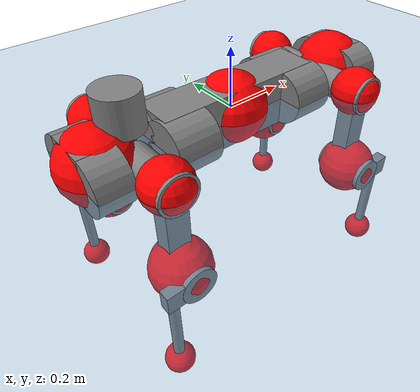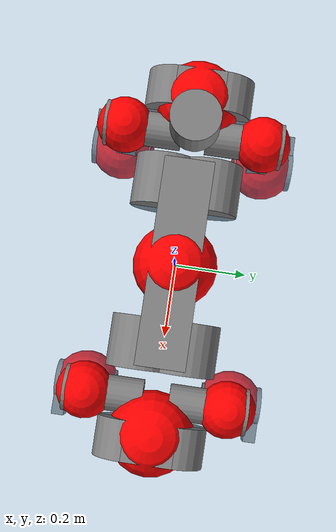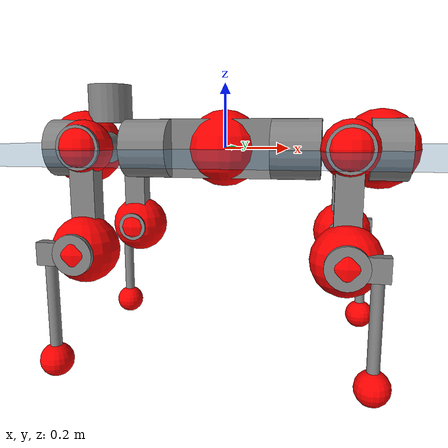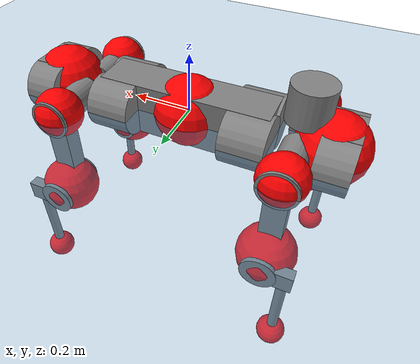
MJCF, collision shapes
<mujoco model="anymal_c">
  <compiler angle="radian" assetdir="assets" balanceinertia="true" inertiafromgeom="false"/>

  <option timestep="0.005" density="1.2" viscosity="2e-05"/>

  <size nkey="1"/>

  <visual>
    <quality shadowsize="8192"/>
    <map shadowclip="0.5"/>
  </visual>

  <default>
    <default class="/">
      <material specular="0" shininess="0.25"/>
      <geom contype="0" conaffinity="0" group="1" solref="-1000 -80"/>
      <site size="0.01 0.005 0.005" group="5"/>
      <general forcelimited="true" forcerange="-80 80" biastype="affine" gainprm="80" biasprm="0 -80 -2"/>
      <default class="anymal_c">
        <joint armature="0.01" damping="0.01" frictionloss="0.1"/>
        <default class="visual">
          <geom type="mesh" group="2"/>
          <default class="visual_zflip"/>
        </default>
        <default class="collision">
          <geom type="cylinder" group="3"/>
          <default class="foot">
            <geom size="0.03 0 0" type="sphere" condim="6" priority="1" friction="0.8 0.02 0.01" solimp="0.015 1 0.03"/>
          </default>
        </default>
      </default>
      <default class="reward_collision_sphere">
        <geom group="5" rgba="1 0 0 1"/>
      </default>
    </default>
  </default>

  <asset>
    <texture type="skybox" colorspace="auto" name="//unnamed_texture_0" builtin="gradient" rgb1="0.95 0.95 0.95" rgb2="0.95 0.95 0.95" width="100" height="600"/>
    <texture type="2d" colorspace="auto" name="texplane" builtin="checker" rgb1="0.345 0.575 0.748" rgb2="0.345 0.575 0.748" markrgb="1 1 1" width="512" height="512"/>
    <texture type="2d" colorspace="linear" name="base" file="base.png"/>
    <texture type="2d" colorspace="linear" name="top_shell" file="top_shell.png"/>
    <texture type="2d" colorspace="linear" name="bottom_shell" file="bottom_shell.png"/>
    <texture type="2d" colorspace="linear" name="remote" file="remote.png"/>
    <texture type="2d" colorspace="linear" name="hatch" file="hatch.png"/>
    <texture type="2d" colorspace="linear" name="handle" file="handle.png"/>
    <texture type="2d" colorspace="linear" name="face" file="face.png"/>
    <texture type="2d" colorspace="linear" name="battery" file="battery.png"/>
    <texture type="2d" colorspace="linear" name="lidar_cage" file="lidar_cage.png"/>
    <texture type="2d" colorspace="linear" name="depth_camera" file="depth_camera.png"/>
    <texture type="2d" colorspace="linear" name="wide_angle_camera" file="wide_angle_camera.png"/>
    <texture type="2d" colorspace="linear" name="lidar" file="lidar.png"/>
    <texture type="2d" colorspace="linear" name="drive" file="drive.png"/>
    <texture type="2d" colorspace="linear" name="hip_l" file="hip_l.png"/>
    <texture type="2d" colorspace="linear" name="shank_l" file="shank_l.png"/>
    <texture type="2d" colorspace="linear" name="foot" file="foot.png"/>
    <texture type="2d" colorspace="linear" name="thigh" file="thigh.png"/>
    <texture type="2d" colorspace="linear" name="shank_r" file="shank_r.png"/>
    <texture type="2d" colorspace="linear" name="hip_r" file="hip_r.png"/>
    <material name="MatPlane" class="/" texture="texplane" texuniform="true" texrepeat="2 2" specular="0.9" shininess="0.5"/>
    <material name="black_plastic" class="/" rgba="0.007 0.007 0.007 1"/>
    <material name="green" class="/" rgba="0.052 0.178 0.033 1"/>
    <material name="red" class="/" rgba="0.178 0.006 0.005 1"/>
    <material name="yellow" class="/" rgba="0.178 0.119 0.006 1"/>
    <material name="lwl" class="/" rgba="0.8 0.8 0.8 1"/>
    <material name="base" class="/" texture="base"/>
    <material name="top_shell" class="/" texture="top_shell"/>
    <material name="bottom_shell" class="/" texture="bottom_shell"/>
    <material name="hip_l" class="/" texture="hip_l"/>
    <material name="thigh" class="/" texture="thigh"/>
    <material name="shank_l" class="/" texture="shank_l"/>
    <material name="foot" class="/" texture="foot"/>
    <material name="hip_r" class="/" texture="hip_r"/>
    <material name="shank" class="/" texture="shank_r"/>
    <material name="hatch" class="/" texture="hatch"/>
    <material name="remote" class="/" texture="remote"/>
    <material name="handle" class="/" texture="handle"/>
    <material name="face" class="/" texture="face"/>
    <material name="depth_camera" class="/" texture="depth_camera"/>
    <material name="wide_angle_camera" class="/" texture="wide_angle_camera"/>
    <material name="battery" class="/" texture="battery"/>
    <material name="lidar_cage" class="/" texture="lidar_cage"/>
    <material name="lidar" class="/" texture="lidar"/>
    <material name="drive" class="/" texture="drive"/>
    <mesh name="base_0" class="/" file="base_0.obj"/>
    <mesh name="base_1" class="/" file="base_1.obj"/>
    <mesh name="base_2" class="/" file="base_2.obj"/>
    <mesh name="base_3" class="/" file="base_3.obj"/>
    <mesh name="base_4" class="/" file="base_4.obj"/>
    <mesh name="base_5" class="/" file="base_5.obj"/>
    <mesh name="top_shell" class="/" file="top_shell.obj"/>
    <mesh name="bottom_shell" class="/" file="bottom_shell.obj"/>
    <mesh name="remote" class="/" file="remote.obj"/>
    <mesh name="handle" class="/" file="handle.obj"/>
    <mesh name="face" class="/" file="face.obj"/>
    <mesh name="wide_angle_camera" class="/" file="wide_angle_camera.obj"/>
    <mesh name="depth_camera" class="/" file="depth_camera.obj"/>
    <mesh name="battery" class="/" file="battery.obj"/>
    <mesh name="lidar_cage" class="/" file="lidar_cage.obj"/>
    <mesh name="lidar" class="/" file="lidar.obj"/>
    <mesh name="drive" class="/" file="drive.obj"/>
    <mesh name="hip_l" class="/" file="hip_l.obj"/>
    <mesh name="thigh" class="/" file="thigh.obj"/>
    <mesh name="shank_l" class="/" file="shank_l.obj"/>
    <mesh name="foot" class="/" file="foot.obj"/>
    <mesh name="hip_r" class="/" file="hip_r.obj"/>
    <mesh name="hatch" class="/" file="hatch.obj"/>
    <mesh name="shank_r" class="/" file="shank_r.obj"/>
  </asset>

  <worldbody>
    <geom name="floor" class="/" size="100 100 0.125" type="plane" group="0" material="MatPlane"/>
    <light name="toplight_shadow" class="/" pos="0 0 5" dir="0.0990148 0.0990148 -0.990148" type="directional" ambient="0.04 0.04 0.04" diffuse="0.55 0.55 0.55" specular="0.12 0.12 0.12"/>
    <light name="toplight_fill" class="/" pos="0 0 5" dir="0.0990148 0.0990148 -0.990148" type="directional" castshadow="false" ambient="0.04 0.04 0.04" diffuse="0.3 0.3 0.3" specular="0.08 0.08 0.08"/>
    <body name="trunk" childclass="anymal_c" pos="-0.000205713 0.000877177 -0.000191075" quat="1 0.00037461 7.04534e-05 -0.000211436">
      <inertial pos="0.00337825 -0.000763419 0.0509908" quat="0.500034 0.502634 0.500512 0.496802" mass="18.6823" diaginertia="0.802582 0.363205 0.269728"/>
      <joint name="//unnamed_joint_0" type="free" armature="0" damping="0" frictionloss="0"/>
      <geom name="//unnamed_geom_1" class="visual" material="green" mesh="base_0"/>
      <geom name="//unnamed_geom_2" class="visual" material="yellow" mesh="base_1"/>
      <geom name="//unnamed_geom_3" class="visual" material="red" mesh="base_2"/>
      <geom name="//unnamed_geom_4" class="visual" material="black_plastic" mesh="base_3"/>
      <geom name="//unnamed_geom_5" class="visual" material="lwl" mesh="base_4"/>
      <geom name="//unnamed_geom_6" class="visual" material="base" mesh="base_5"/>
      <geom name="trunk_1" class="collision" size="0.289958 0.0699898 0.0899869" type="box"/>
      <geom name="trunk_2" class="collision" size="0.0899869 0.0724895" pos="0.228609 0.0630039 0" quat="0.707107 0 0.707107 0"/>
      <geom name="trunk_3" class="collision" size="0.0899869 0.0724895" pos="-0.228609 0.0630039 0" quat="0.707107 0 0.707107 0"/>
      <geom name="trunk_4" class="collision" size="0.0899869 0.0724895" pos="0.228609 -0.0630039 0" quat="0.707107 0 0.707107 0"/>
      <geom name="trunk_5" class="collision" size="0.0899869 0.0724895" pos="-0.228609 -0.0630039 0" quat="0.707107 0 0.707107 0"/>
      <geom name="//unnamed_geom_12" class="visual" material="top_shell" mesh="top_shell"/>
      <geom name="//unnamed_geom_13" class="visual" material="bottom_shell" mesh="bottom_shell"/>
      <geom name="//unnamed_geom_14" class="visual" material="remote" mesh="remote"/>
      <geom name="//unnamed_geom_15" class="visual" material="handle" mesh="handle"/>
      <geom name="//unnamed_geom_16" class="visual" pos="0.435671 0 0" quat="1 0 0 0" material="face" mesh="face"/>
      <geom name="trunk_6" class="collision" size="0.054992 0.0699898 0.0899869" pos="0.49348 0 0" type="box"/>
      <geom name="//unnamed_geom_18" class="collision" size="0.0899869 0.054992" pos="0.49348 0.0630039 0" quat="0.707107 0 0.707107 0"/>
      <geom name="//unnamed_geom_19" class="collision" size="0.0899869 0.054992" pos="0.49348 -0.0630039 0" quat="0.707107 0 0.707107 0"/>
      <geom name="//unnamed_geom_20" class="visual" pos="0.485229 0 -0.0305942" quat="0.965926 0 0.258819 0" material="depth_camera" mesh="depth_camera"/>
      <geom name="//unnamed_geom_21" class="visual" pos="0.539202 0 0.015695" material="wide_angle_camera" mesh="wide_angle_camera"/>
      <geom name="//unnamed_geom_22" class="visual_zflip" pos="-0.435671 0 0" quat="0 0 0 1" material="face" mesh="face"/>
      <geom name="trunk_7" class="collision" size="0.054992 0.0699898 0.0899869" pos="-0.49348 0 0" quat="0 0 0 1" type="box"/>
      <geom name="//unnamed_geom_24" class="collision" size="0.0899869 0.054992" pos="-0.49348 -0.0630039 0" quat="0 -0.707107 0 0.707107"/>
      <geom name="//unnamed_geom_25" class="collision" size="0.0899869 0.054992" pos="-0.49348 0.0630039 0" quat="0 -0.707107 0 0.707107"/>
      <geom name="//unnamed_geom_26" class="visual" pos="-0.485229 0 -0.0305942" quat="0 -0.258819 0 0.965926" material="depth_camera" mesh="depth_camera"/>
      <geom name="//unnamed_geom_27" class="visual_zflip" pos="-0.539202 0 0.015695" quat="0 0 0 1" material="wide_angle_camera" mesh="wide_angle_camera"/>
      <geom name="//unnamed_geom_28" class="visual" material="battery" mesh="battery"/>
      <geom name="//unnamed_geom_29" class="visual" pos="0 0.0668364 0.0304771" quat="0.683013 -0.183013 0.183013 0.683013" material="depth_camera" mesh="depth_camera"/>
      <geom name="//unnamed_geom_30" class="visual" pos="0 -0.0668364 0.0304771" quat="0.683013 0.183013 0.183013 -0.683013" material="depth_camera" mesh="depth_camera"/>
      <geom name="//unnamed_geom_31" class="visual" pos="-0.382592 0 0.0770598" quat="1 0 0 0" material="lidar_cage" mesh="lidar_cage"/>
      <geom name="trunk_8" class="collision" size="0.0699898 0.0599913" pos="-0.382592 0 0.139966"/>
      <geom name="//unnamed_geom_33" class="visual" pos="-0.382592 -5.9332e-05 0.149087" quat="0.707107 0 0 -0.707107" material="lidar" mesh="lidar"/>
      <geom name="//unnamed_geom_34" class="visual" pos="0.315218 0.0936585 -2.55953e-09" quat="0.258819 0.965926 0 0" material="drive" mesh="drive"/>
      <geom name="//unnamed_geom_35" class="visual" pos="0.315218 -0.0936585 2.55953e-09" quat="0.258819 -0.965926 0 0" material="drive" mesh="drive"/>
      <geom name="//unnamed_geom_36" class="visual" pos="-0.315218 0.0936585 2.55953e-09" quat="0 0 0.965926 -0.258819" material="drive" mesh="drive"/>
      <geom name="//unnamed_geom_37" class="visual" pos="-0.315218 -0.0936585 -2.55953e-09" quat="0 0 -0.965926 -0.258819" material="drive" mesh="drive"/>
      <geom name="//unnamed_geom_38" class="visual" pos="0.121925 0 0.0765356" quat="1 0 0 0" material="hatch" mesh="hatch"/>
      <geom name="//unnamed_geom_39" class="reward_collision_sphere" size="0.119983"/>
      <geom name="//unnamed_geom_40" class="reward_collision_sphere" size="0.119983" pos="0.472984 0 0"/>
      <geom name="//unnamed_geom_41" class="reward_collision_sphere" size="0.119983" pos="-0.472984 0 0"/>
      <site name="imu" pos="0.262174 0.00602591 0.0470467" size="0.00999855"/>
      <camera name="track" pos="0 -1.80011 0" quat="0.707107 0.707107 0 0" mode="trackcom"/>
      <camera name="ego_camera" pos="0.472984 0 -0.0419373" quat="-0.5 -0.5 0.5 0.5"/>
      <body name="LF_HIP" pos="0.315645 0.0941266 1.88172e-05" quat="0.258786 0.965935 0.000153109 -3.76912e-05">
        <inertial pos="0.0595781 -0.0129499 -0.00870692" quat="-0.126738 0.709227 -0.140326 0.679149" mass="2.79886" diaginertia="0.00758883 0.00294438 0.00420677"/>
        <joint name="LF_HAA" pos="0 0 0" axis="1 6.47414e-05 -1.16781e-05" range="-0.704337 0.479542" armature="0.0101244" damping="0.00900077" frictionloss="0.0992364"/>
        <geom name="//unnamed_geom_42" class="visual" pos="0 -0.000150565 2.47303e-05" quat="0.258819 -0.965926 0 0" material="hip_l" mesh="hip_l"/>
        <geom name="//unnamed_geom_43" class="visual" pos="0.0629595 -0.0743531 -0.0440253" quat="0.183013 -0.683013 0.683013 0.183013" material="drive" mesh="drive"/>
        <geom name="//unnamed_geom_44" class="collision" size="0.0499927 0.0699898" pos="0.0629595 -0.0107645 -0.00723943" quat="-0.353553 -0.612372 0.612372 -0.353553"/>
        <body name="LF_THIGH" pos="0.0629074 -0.0664177 -0.04418" quat="0.182736 -0.682926 0.683221 0.182834">
          <inertial pos="0.0323797 0.000874088 -0.25788" quat="0.993019 -0.00440487 -0.0816525 0.0850127" mass="3.04308" diaginertia="0.038905 0.0177979 0.00530509"/>
          <joint name="LF_HFE" pos="0 0 0" axis="0.999995 -0.00309464 3.22367e-05" range="-3.12696 3.13345" armature="0.0103255" damping="0.0107306" frictionloss="0.104243"/>
          <geom name="//unnamed_geom_45" class="visual" pos="0.00300472 4.73473e-06 0" quat="0.707107 0 0 -0.707107" material="thigh" mesh="thigh"/>
          <geom name="//unnamed_geom_46" class="collision" size="0.0649906 0.0399942" pos="0.042043 0 0" quat="0.5 0.5 -0.5 -0.5"/>
          <geom name="//unnamed_geom_47" class="collision" size="0.0374946 0.0299956 0.141293" pos="0.0315323 0 -0.148158" quat="0.707107 0 0 -0.707107" type="box"/>
          <geom name="//unnamed_geom_48" class="visual" pos="0.105423 0 -0.298803" quat="1 0 0 0" material="drive" mesh="drive"/>
          <geom name="//unnamed_geom_49" class="collision" size="0.0499927 0.0699898" pos="0.0318476 0 -0.298803" quat="0.707107 0 0.707107 0"/>
          <geom name="//unnamed_geom_50" class="reward_collision_sphere" size="0.0799884" pos="0.0262769 0 0"/>
          <body name="LF_SHANK" pos="0.10563 -0.000286988 -0.300054" quat="1 3.01874e-05 2.80812e-05 1.69427e-05">
            <inertial pos="0.00579117 -0.0542256 -0.084123" quat="0.992932 -0.115924 -0.00143436 -0.0254042" mass="0.594884" diaginertia="0.0131921 0.0055315 0.00143624"/>
            <joint name="LF_KFE" pos="0 0 0" axis="0.999999 0.000942884 -0.000448968" range="-3.12516 3.1275" armature="0.0104514" damping="0.0065325" frictionloss="0.100454"/>
            <geom name="//unnamed_geom_51" class="visual" pos="0.000979773 0.0052242 0" quat="0.707107 0 0 -0.707107" material="shank_l" mesh="shank_l"/>
            <geom name="LF_kfe_act" class="collision" size="0.0599913 0.0199971" pos="0.0210215 0 0" quat="0.5 0.5 -0.5 -0.5"/>
            <geom name="//unnamed_geom_53" class="collision" size="0.0574907 0.0337451 0.0189972" pos="0.0210215 -0.0517523 0" quat="0.5 0.5 -0.5 -0.5" type="box"/>
            <geom name="//unnamed_geom_54" class="visual" pos="0.0137163 -0.0774763 -0.354339" quat="0.382683 0 0 -0.92388" material="foot" mesh="foot"/>
            <geom name="LF_calf" class="collision" size="0.0174975 0.141232" pos="0.0137165 -0.0791599 -0.177169" quat="0.707107 0 0 -0.707107"/>
            <geom name="LF_foot" class="foot" size="0.0299847" pos="0.0137165 -0.0791599 -0.330749" quat="0.707107 0 0 -0.707107"/>
            <geom name="//unnamed_geom_57" class="reward_collision_sphere" size="0.0999855" pos="-0.0525538 0 0"/>
            <geom name="//unnamed_geom_58" class="reward_collision_sphere" size="0.0499927" pos="0.0137165 -0.0791599 -0.330749"/>
            <site name="LF_foot" class="foot" pos="0.0137165 -0.0791599 -0.330749" quat="0.707107 0 0 -0.707107" size="0.00999855"/>
          </body>
        </body>
      </body>
      <body name="RF_HIP" pos="0.31522 -0.0934372 -0.000904122" quat="0.258856 -0.965916 -1.37164e-05 1.14593e-05">
        <inertial pos="0.059557 0.0137267 -0.00830464" quat="0.135226 0.679127 0.127832 0.710042" mass="2.79261" diaginertia="0.00760954 0.00290788 0.00417644"/>
        <joint name="RF_HAA" pos="0 0 0" axis="0.999996 -0.000680255 -0.00276532" range="-0.497924 0.718797" armature="0.0103521" damping="0.0089632" frictionloss="0.101577"/>
        <geom name="//unnamed_geom_59" class="visual" pos="0 0.000150564 2.47302e-05" quat="0.258819 0.965926 0 0" material="hip_r" mesh="hip_r"/>
        <geom name="//unnamed_geom_60" class="visual" pos="0.0629595 0.0743531 -0.0440253" quat="0.183013 0.683013 0.683013 -0.183013" material="drive" mesh="drive"/>
        <geom name="//unnamed_geom_61" class="collision" size="0.0499927 0.0699898" pos="0.0629595 0.0107645 -0.00723943" quat="-0.353553 0.612372 0.612372 0.353553"/>
        <body name="RF_THIGH" pos="0.0635135 0.0659693 -0.0450862" quat="0.183177 0.682981 0.682979 -0.183093">
          <inertial pos="0.0317229 0.000848218 -0.257007" quat="0.992762 -0.00501366 -0.0808889 0.0886278" mass="3.07787" diaginertia="0.0391986 0.0176508 0.00529906"/>
          <joint name="RF_HFE" pos="0 0 0" axis="1 -0.00037174 -0.000917161" stiffness="0.00690845" range="-3.14451 3.13792" armature="0.0100257" damping="0.00862164" frictionloss="0.104494"/>
          <geom name="//unnamed_geom_62" class="visual" pos="0.00300472 4.73473e-06 0" quat="0.707107 0 0 -0.707107" material="thigh" mesh="thigh"/>
          <geom name="//unnamed_geom_63" class="collision" size="0.0649906 0.0399942" pos="0.042043 0 0" quat="0.5 0.5 0.5 0.5"/>
          <geom name="//unnamed_geom_64" class="collision" size="0.0374946 0.0299956 0.141293" pos="0.0315323 0 -0.148158" quat="0.707107 0 0 0.707107" type="box"/>
          <geom name="//unnamed_geom_65" class="visual" pos="0.105423 0 -0.298803" quat="1 0 0 0" material="drive" mesh="drive"/>
          <geom name="//unnamed_geom_66" class="collision" size="0.0499927 0.0699898" pos="0.0318476 0 -0.298803" quat="0.707107 0 0.707107 0"/>
          <geom name="//unnamed_geom_67" class="reward_collision_sphere" size="0.0799884" pos="0.0262769 0 0"/>
          <body name="RF_SHANK" pos="0.105273 0.000109283 -0.297951" quat="1 9.48446e-05 -5.99149e-05 -0.000215007">
            <inertial pos="0.00687011 0.0542927 -0.0845949" quat="0.992924 0.116366 -0.00167231 0.0236198" mass="0.593502" diaginertia="0.0131938 0.00544923 0.00144654"/>
            <joint name="RF_KFE" pos="0 0 0" axis="0.999997 -0.00251322 -0.000495662" range="-3.14324 3.14448" armature="0.00983856" damping="0.00251018" frictionloss="0.100622"/>
            <geom name="//unnamed_geom_68" class="visual" pos="0.000979767 -0.00522419 0" quat="0.707107 0 0 0.707107" material="shank" mesh="shank_r"/>
            <geom name="RF_kfe_act" class="collision" size="0.0599913 0.0199971" pos="0.0210215 0 0" quat="0.5 0.5 0.5 0.5"/>
            <geom name="//unnamed_geom_70" class="collision" size="0.0574907 0.0337451 0.0189972" pos="0.0210215 0.0517523 0" quat="0.5 0.5 0.5 0.5" type="box"/>
            <geom name="//unnamed_geom_71" class="visual" pos="0.0137168 0.0774763 -0.354339" quat="0.382683 0 0 0.92388" material="foot" mesh="foot"/>
            <geom name="RF_calf" class="collision" size="0.0174975 0.141232" pos="0.0137165 0.0791599 -0.177169" quat="0.707107 0 0 0.707107"/>
            <geom name="RF_foot" class="foot" size="0.027871" pos="0.0137165 0.0791599 -0.330749" quat="0.707107 0 0 0.707107"/>
            <geom name="//unnamed_geom_74" class="reward_collision_sphere" size="0.0999855" pos="-0.0525538 0 0"/>
            <geom name="//unnamed_geom_75" class="reward_collision_sphere" size="0.0499927" pos="0.0137165 0.0791599 -0.330749"/>
            <site name="RF_foot" class="foot" pos="0.0137165 0.0791599 -0.330749" quat="0.707107 0 0 0.707107" size="0.00999855"/>
          </body>
        </body>
      </body>
      <body name="LH_HIP" pos="-0.314738 0.0929842 -0.000206295" quat="4.84857e-06 -5.28289e-05 0.965896 -0.258931">
        <inertial pos="0.0601793 0.0130737 -0.00960439" quat="0.134812 0.680527 0.12642 0.709032" mass="2.75873" diaginertia="0.00749438 0.00294078 0.00413621"/>
        <joint name="LH_HAA" pos="0 0 0" axis="0.999998 0.0018813 0.000766938" range="-0.501669 0.721686" armature="0.00974316" damping="0.00932427" frictionloss="0.0967932"/>
        <geom name="//unnamed_geom_76" class="visual" pos="0 0.000150564 2.47302e-05" quat="-0.258819 -0.965926 0 0" material="hip_r" mesh="hip_r"/>
        <geom name="//unnamed_geom_77" class="visual" pos="0.0629595 0.0743531 -0.0440253" quat="0.183013 0.683013 0.683013 -0.183013" material="drive" mesh="drive"/>
        <geom name="//unnamed_geom_78" class="collision" size="0.0499927 0.0699898" pos="0.0629595 0.0107645 -0.00723943" quat="-0.353553 0.612372 0.612372 0.353553"/>
        <body name="LH_THIGH" pos="0.0623663 0.0657013 -0.0449147" quat="0.182754 0.683128 0.682905 -0.18324">
          <inertial pos="0.0323045 0.000880164 -0.257462" quat="0.992456 -0.00343901 -0.0817631 0.0912895" mass="3.0472" diaginertia="0.0392035 0.017465 0.00529443"/>
          <joint name="LH_HFE" pos="0 0 0" axis="0.999995 0.00124901 -0.00291575" range="-3.14586 3.14453" armature="0.00955592" damping="0.00502322" frictionloss="0.104266"/>
          <geom name="//unnamed_geom_79" class="visual" pos="0.00300472 4.73473e-06 0" quat="0.707107 0 0 -0.707107" material="thigh" mesh="thigh"/>
          <geom name="//unnamed_geom_80" class="collision" size="0.0649906 0.0399942" pos="0.042043 0 0" quat="0.5 0.5 -0.5 -0.5"/>
          <geom name="//unnamed_geom_81" class="collision" size="0.0374946 0.0299956 0.141293" pos="0.0315323 0 -0.148158" quat="0.707107 0 0 -0.707107" type="box"/>
          <geom name="//unnamed_geom_82" class="visual" pos="0.105423 0 -0.298803" quat="1 0 0 0" material="drive" mesh="drive"/>
          <geom name="//unnamed_geom_83" class="collision" size="0.0499927 0.0699898" pos="0.0318476 0 -0.298803" quat="0.707107 0 0.707107 0"/>
          <geom name="//unnamed_geom_84" class="reward_collision_sphere" size="0.0799884" pos="0.0262769 0 0"/>
          <body name="LH_SHANK" pos="0.105788 -0.000425557 -0.299673" quat="1 0.000240602 4.51107e-05 -0.000348198">
            <inertial pos="0.00576654 0.0545617 -0.0843317" quat="0.99293 0.116235 -0.000462988 0.0240559" mass="0.589104" diaginertia="0.0132254 0.00553201 0.00143499"/>
            <joint name="LH_KFE" pos="0 0 0" axis="0.999993 0.00371569 0.000670116" range="-3.1341 3.13863" armature="0.0103844" damping="0.00533141" frictionloss="0.104483"/>
            <geom name="//unnamed_geom_85" class="visual" pos="0.000979767 -0.00522419 0" quat="-0.707107 0 0 -0.707107" material="shank" mesh="shank_r"/>
            <geom name="LH_kfe_act" class="collision" size="0.0599913 0.0199971" pos="0.0210215 0 0" quat="0.5 0.5 -0.5 -0.5"/>
            <geom name="//unnamed_geom_87" class="collision" size="0.0574907 0.0337451 0.0189972" pos="0.0210215 0.0517523 0" quat="0.5 0.5 -0.5 -0.5" type="box"/>
            <geom name="//unnamed_geom_88" class="visual" pos="0.0137168 0.0774763 -0.354339" quat="-0.382683 0 0 -0.92388" material="foot" mesh="foot"/>
            <geom name="LH_calf" class="collision" size="0.0174975 0.141232" pos="0.0137165 0.0791599 -0.177169" quat="0.707107 0 0 -0.707107"/>
            <geom name="LH_foot" class="foot" size="0.0317702" pos="0.0137165 0.0791599 -0.330749" quat="0.707107 0 0 -0.707107"/>
            <geom name="//unnamed_geom_91" class="reward_collision_sphere" size="0.0999855" pos="-0.0525538 0 0"/>
            <geom name="//unnamed_geom_92" class="reward_collision_sphere" size="0.0499927" pos="0.0137165 0.0791599 -0.330749"/>
            <site name="LH_foot" class="foot" pos="0.0137165 0.0791599 -0.330749" quat="0.707107 0 0 -0.707107" size="0.00999855"/>
          </body>
        </body>
      </body>
      <body name="RH_HIP" pos="-0.315853 -0.0931897 0.000372028" quat="0.000450845 -0.00037084 -0.965917 -0.25885">
        <inertial pos="0.0592742 -0.014088 -0.00919974" quat="-0.127323 0.709727 -0.135844 0.679428" mass="2.80201" diaginertia="0.00758575 0.00293841 0.00425851"/>
        <joint name="RH_HAA" pos="0 0 0" axis="1 0.000208535 -0.000398441" range="-0.733354 0.475723" armature="0.0100608" damping="0.0121177" frictionloss="0.0955191"/>
        <geom name="//unnamed_geom_93" class="visual" pos="0 -0.000150565 2.47303e-05" quat="-0.258819 0.965926 0 0" material="hip_l" mesh="hip_l"/>
        <geom name="//unnamed_geom_94" class="visual" pos="0.0629595 -0.0743531 -0.0440253" quat="-0.183013 0.683013 -0.683013 -0.183013" material="drive" mesh="drive"/>
        <geom name="//unnamed_geom_95" class="collision" size="0.0499927 0.0699898" pos="0.0629595 -0.0107645 -0.00723943" quat="0.353553 0.612372 -0.612372 0.353553"/>
        <body name="RH_THIGH" pos="0.0637028 -0.0662932 -0.0443753" quat="-0.182839 0.683125 -0.682958 -0.182972">
          <inertial pos="0.0326633 0.000641467 -0.257103" quat="0.993302 -0.00595073 -0.0796533 0.0834951" mass="3.09708" diaginertia="0.0390675 0.0176968 0.00539192"/>
          <joint name="RH_HFE" pos="0 0 0" axis="1 -0.00048711 -0.000393696" range="-3.14682 3.16173" armature="0.00968935" damping="0.00583007" frictionloss="0.10153"/>
          <geom name="//unnamed_geom_96" class="visual" pos="0.00300472 4.73473e-06 0" quat="0.707107 0 0 -0.707107" material="thigh" mesh="thigh"/>
          <geom name="//unnamed_geom_97" class="collision" size="0.0649906 0.0399942" pos="0.042043 0 0" quat="0.5 0.5 0.5 0.5"/>
          <geom name="//unnamed_geom_98" class="collision" size="0.0374946 0.0299956 0.141293" pos="0.0315323 0 -0.148158" quat="0.707107 0 0 0.707107" type="box"/>
          <geom name="//unnamed_geom_99" class="visual" pos="0.105423 0 -0.298803" quat="1 0 0 0" material="drive" mesh="drive"/>
          <geom name="//unnamed_geom_100" class="collision" size="0.0499927 0.0699898" pos="0.0318476 0 -0.298803" quat="0.707107 0 0.707107 0"/>
          <geom name="//unnamed_geom_101" class="reward_collision_sphere" size="0.0799884" pos="0.0262769 0 0"/>
          <body name="RH_SHANK" pos="0.104343 0.000211041 -0.298654" quat="1 -4.03078e-05 -1.80391e-05 -3.66549e-05">
            <inertial pos="0.00668853 -0.0545723 -0.0845331" quat="0.992914 -0.115952 -0.00119318 -0.0259787" mass="0.582445" diaginertia="0.0131053 0.0054175 0.0014227"/>
            <joint name="RH_KFE" pos="0 0 0" axis="0.999976 -0.00224231 -0.00650598" range="-3.12209 3.12314" armature="0.00997677" damping="0.00564722" frictionloss="0.0958258"/>
            <geom name="//unnamed_geom_102" class="visual" pos="0.000979773 0.0052242 0" quat="0.707107 0 0 -0.707107" material="shank_l" mesh="shank_l"/>
            <geom name="RH_kfe_act" class="collision" size="0.0599913 0.0199971" pos="0.0210215 0 0" quat="0.5 0.5 0.5 0.5"/>
            <geom name="//unnamed_geom_104" class="collision" size="0.0574907 0.0337451 0.0189972" pos="0.0210215 -0.0517523 0" quat="0.5 0.5 0.5 0.5" type="box"/>
            <geom name="//unnamed_geom_105" class="visual" pos="0.0137163 -0.0774763 -0.354339" quat="0.382683 0 0 -0.92388" material="foot" mesh="foot"/>
            <geom name="RH_calf" class="collision" size="0.0174975 0.141232" pos="0.0137165 -0.0791599 -0.177169" quat="0.707107 0 0 0.707107"/>
            <geom name="RH_foot" class="foot" size="0.0283193" pos="0.0137165 -0.0791599 -0.330749" quat="0.707107 0 0 0.707107"/>
            <geom name="//unnamed_geom_108" class="reward_collision_sphere" size="0.0999855" pos="-0.0525538 0 0"/>
            <geom name="//unnamed_geom_109" class="reward_collision_sphere" size="0.0499927" pos="0.0137165 -0.0791599 -0.330749"/>
            <site name="RH_foot" class="foot" pos="0.0137165 -0.0791599 -0.330749" quat="0.707107 0 0 0.707107" size="0.00999855"/>
          </body>
        </body>
      </body>
    </body>
  </worldbody>

  <contact>
    <pair class="/" geom1="floor" geom2="LF_foot" name="//unnamed_contact_0"/>
    <pair class="/" geom1="floor" geom2="RF_foot" name="//unnamed_contact_1"/>
    <pair class="/" geom1="floor" geom2="LH_foot" name="//unnamed_contact_2"/>
    <pair class="/" geom1="floor" geom2="RH_foot" name="//unnamed_contact_3"/>
  </contact>

  <actuator>
    <general name="LF_HAA" class="/" joint="LF_HAA" forcerange="-78.2192 78.2192" gainprm="80.5154" biasprm="0 -80.5154 -1.89343"/>
    <general name="LF_HFE" class="/" joint="LF_HFE" forcerange="-80.189 80.189" gainprm="80.5154" biasprm="0 -80.5154 -1.89343"/>
    <general name="LF_KFE" class="/" joint="LF_KFE" forcerange="-79.6414 79.6414" gainprm="80.5154" biasprm="0 -80.5154 -1.89343"/>
    <general name="RF_HAA" class="/" joint="RF_HAA" forcerange="-82.7754 82.7754" gainprm="80.5154" biasprm="0 -80.5154 -1.89343"/>
    <general name="RF_HFE" class="/" joint="RF_HFE" forcerange="-81.4068 81.4068" gainprm="80.5154" biasprm="0 -80.5154 -1.89343"/>
    <general name="RF_KFE" class="/" joint="RF_KFE" forcerange="-82.4415 82.4415" gainprm="80.5154" biasprm="0 -80.5154 -1.89343"/>
    <general name="LH_HAA" class="/" joint="LH_HAA" forcerange="-79.3184 79.3184" gainprm="80.5154" biasprm="0 -80.5154 -1.89343"/>
    <general name="LH_HFE" class="/" joint="LH_HFE" forcerange="-80.6155 80.6155" gainprm="80.5154" biasprm="0 -80.5154 -1.89343"/>
    <general name="LH_KFE" class="/" joint="LH_KFE" forcerange="-80.5011 80.5011" gainprm="80.5154" biasprm="0 -80.5154 -1.89343"/>
    <general name="RH_HAA" class="/" joint="RH_HAA" forcerange="-81.8917 81.8917" gainprm="80.5154" biasprm="0 -80.5154 -1.89343"/>
    <general name="RH_HFE" class="/" joint="RH_HFE" forcerange="-79.6146 79.6146" gainprm="80.5154" biasprm="0 -80.5154 -1.89343"/>
    <general name="RH_KFE" class="/" joint="RH_KFE" forcerange="-80.2051 80.2051" gainprm="80.5154" biasprm="0 -80.5154 -1.89343"/>
  </actuator>

  <sensor>
    <gyro site="imu" name="imu_angular_velocity"/>
    <velocimeter site="imu" name="imu_linear_velocity"/>
    <framelinvel objtype="site" objname="LF_foot" name="LF_foot_global_linear_velocity"/>
    <framelinvel objtype="site" objname="RF_foot" name="RF_foot_global_linear_velocity"/>
    <framelinvel objtype="site" objname="LH_foot" name="LH_foot_global_linear_velocity"/>
    <framelinvel objtype="site" objname="RH_foot" name="RH_foot_global_linear_velocity"/>
  </sensor>

  <keyframe>
    <key name="home" qpos="0 0 0.55 1 0 0 0 0 0.4 -0.8 0 -0.4 0.8 0 -0.4 0.8 0 0.4 -0.8"/>
  </keyframe>
</mujoco>
